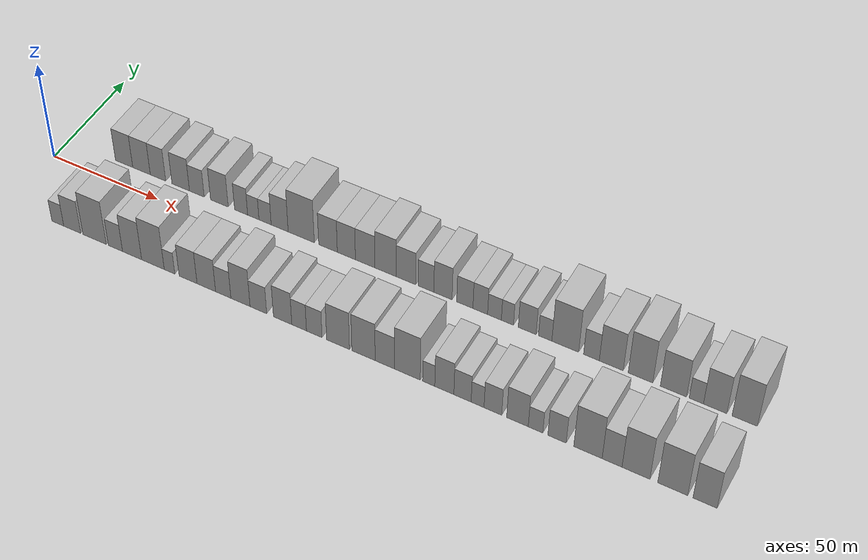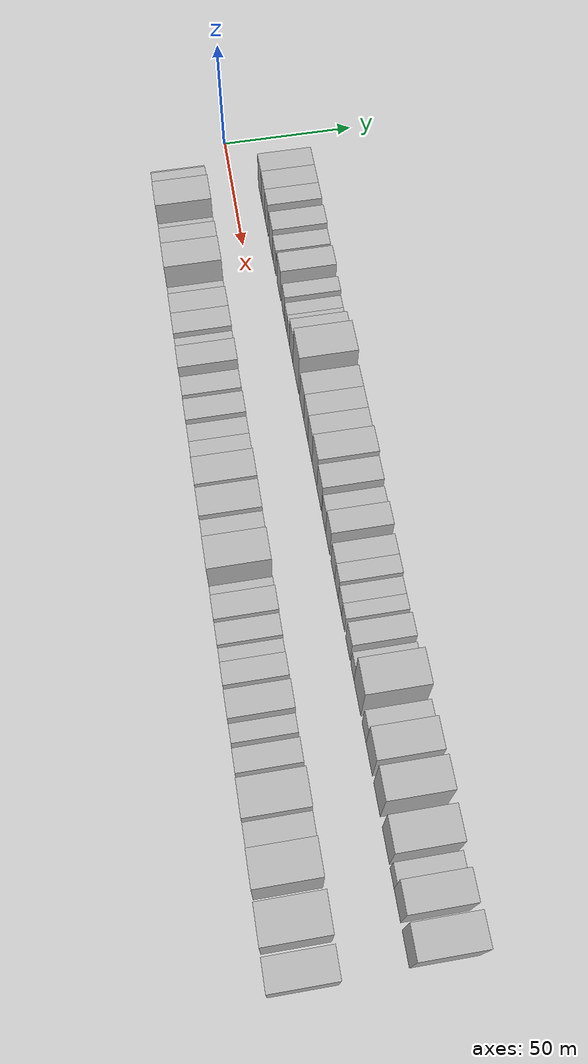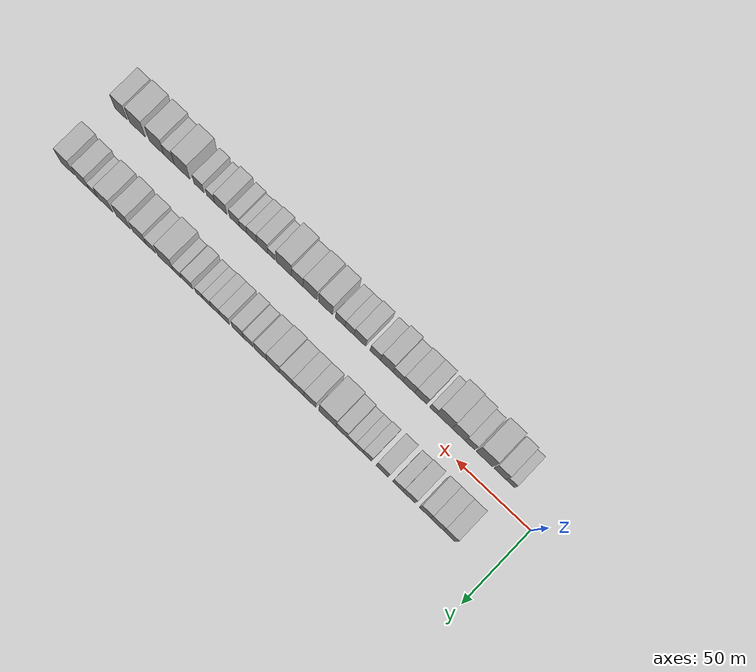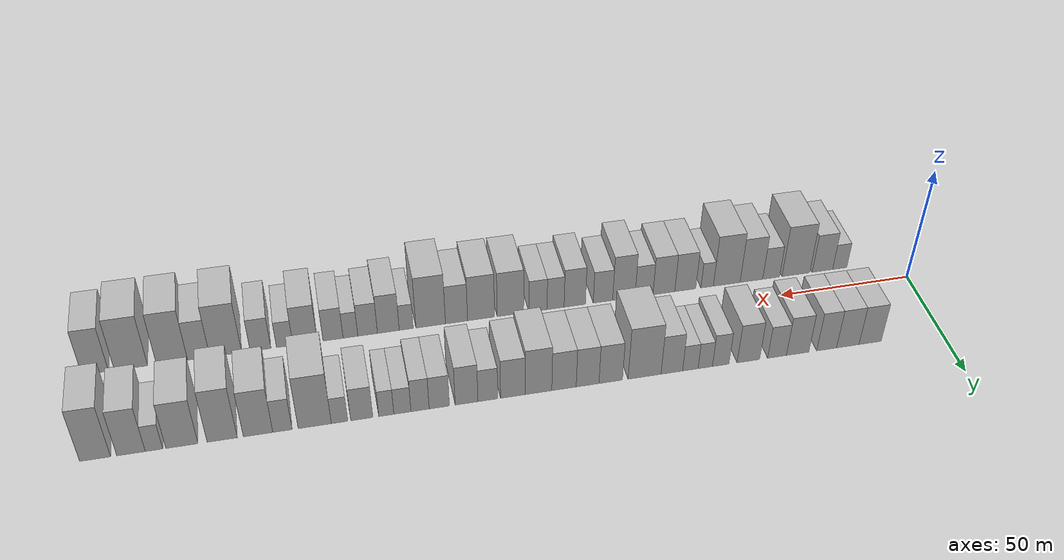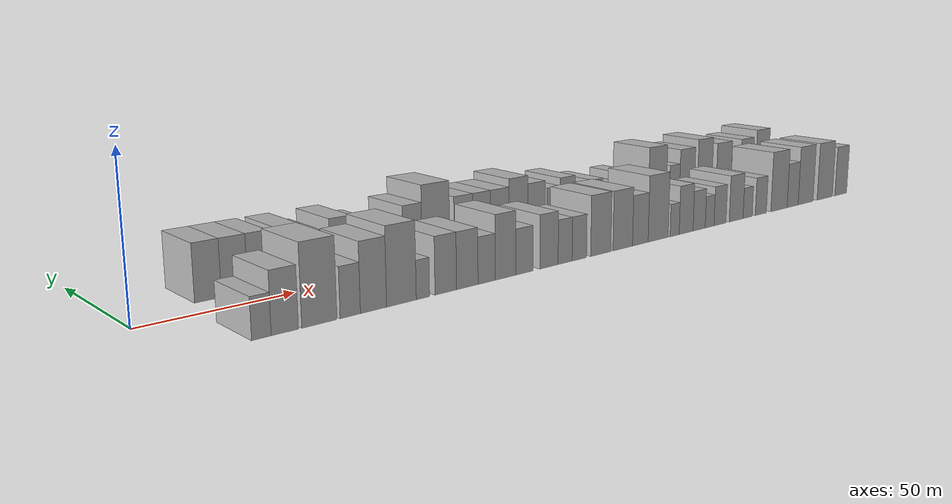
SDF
<sdf version="1.6">
 <world name="default">
  <scene>
   <sky><clouds><speed>12</speed></clouds></sky>
   <ambient>0.4 0.4 0.4 1</ambient>
   <background>0.7 0.7 0.7 1</background>
   <shadows>1</shadows>
  </scene>
  <gravity>0 0 -9.8066</gravity>
  <magnetic_field>6e-06 2.3e-05 -4.2e-05</magnetic_field>
  <physics default="0" name="default_physics" type="ode">
   <ode>
    <solver>
     <type>quick</type>
     <iters>10</iters>
     <sor>1.0</sor>
     <use_dynamic_moi_rescaling>0</use_dynamic_moi_rescaling>
    </solver>
    <constraints>
     <cfm>0</cfm>
     <erp>0.2</erp>
     <contact_max_correcting_vel>100</contact_max_correcting_vel>
     <contact_surface_layer>0.001</contact_surface_layer>
    </constraints>
   </ode>
   <max_step_size>0.004</max_step_size>
   <real_time_factor>1</real_time_factor>
   <real_time_update_rate>250</real_time_update_rate>
  </physics>
  <light name="sun" type="directional">
   <pose>0 0 10 0 0 0</pose>
   <diffuse>0.8 0.8 0.8 1</diffuse>
   <specular>0.2 0.2 0.2 1</specular>
   <attenuation>
    <range>1000</range>
    <constant>0.9</constant>
    <linear>0.01</linear>
    <quadratic>0.001</quadratic>
   </attenuation>
   <direction>-0.5 0.1 -0.9</direction>
  </light>
  <model name="building_1">
   <static>1</static>
   <pose>27.2132 20.0000 0 0.000000 0.000000 1.570796</pose>
   <link name="link">
    <pose>0 0 9.00 0 0 0</pose>
    <collision name="collision"><geometry><box><size>20.0000 8.4265 18.0000</size></box></geometry></collision>
    <visual name="visual">
     <cast_shadows>0</cast_shadows>
     <geometry><box><size>20.0000 8.4265 18.0000</size></box></geometry>
     <material>
      <script>
       <uri>model://HANNAS_wall/materials/scripts</uri>
       <uri>model://HANNAS_wall/materials/textures</uri>
       <name>vrc/HANNAS_wall</name>
      </script>
     </material>
    </visual>
   </link>
  </model>
  <model name="building_2">
   <static>1</static>
   <pose>35.6799 20.0000 0 0.000000 0.000000 1.570796</pose>
   <link name="link">
    <pose>0 0 9.00 0 0 0</pose>
    <collision name="collision"><geometry><box><size>20.0000 8.5069 18.0000</size></box></geometry></collision>
    <visual name="visual">
     <cast_shadows>0</cast_shadows>
     <geometry><box><size>20.0000 8.5069 18.0000</size></box></geometry>
     <material>
      <script>
       <uri>model://HANNAS_wall/materials/scripts</uri>
       <uri>model://HANNAS_wall/materials/textures</uri>
       <name>vrc/HANNAS_wall</name>
      </script>
     </material>
    </visual>
   </link>
  </model>
  <model name="building_3">
   <static>1</static>
   <pose>43.6519 20.0000 0 0.000000 0.000000 1.570796</pose>
   <link name="link">
    <pose>0 0 9.00 0 0 0</pose>
    <collision name="collision"><geometry><box><size>20.0000 7.4371 18.0000</size></box></geometry></collision>
    <visual name="visual">
     <cast_shadows>0</cast_shadows>
     <geometry><box><size>20.0000 7.4371 18.0000</size></box></geometry>
     <material>
      <script>
       <uri>model://HANNAS_wall/materials/scripts</uri>
       <uri>model://HANNAS_wall/materials/textures</uri>
       <name>vrc/HANNAS_wall</name>
      </script>
     </material>
    </visual>
   </link>
  </model>
  <model name="building_4">
   <static>1</static>
   <pose>54.5513 20.0000 0 0.000000 0.000000 1.570796</pose>
   <link name="link">
    <pose>0 0 9.00 0 0 0</pose>
    <collision name="collision"><geometry><box><size>20.0000 8.3616 18.0000</size></box></geometry></collision>
    <visual name="visual">
     <cast_shadows>0</cast_shadows>
     <geometry><box><size>20.0000 8.3616 18.0000</size></box></geometry>
     <material>
      <script>
       <uri>model://HANNAS_wall/materials/scripts</uri>
       <uri>model://HANNAS_wall/materials/textures</uri>
       <name>vrc/HANNAS_wall</name>
      </script>
     </material>
    </visual>
   </link>
  </model>
  <model name="building_5">
   <static>1</static>
   <pose>62.2326 20.0000 0 0.000000 0.000000 1.570796</pose>
   <link name="link">
    <pose>0 0 7.50 0 0 0</pose>
    <collision name="collision"><geometry><box><size>20.0000 7.0010 15.0000</size></box></geometry></collision>
    <visual name="visual">
     <cast_shadows>0</cast_shadows>
     <geometry><box><size>20.0000 7.0010 15.0000</size></box></geometry>
     <material>
      <script>
       <uri>model://HANNAS_wall/materials/scripts</uri>
       <uri>model://HANNAS_wall/materials/textures</uri>
       <name>vrc/HANNAS_wall</name>
      </script>
     </material>
    </visual>
   </link>
  </model>
  <model name="building_6">
   <static>1</static>
   <pose>72.8864 20.0000 0 0.000000 0.000000 1.570796</pose>
   <link name="link">
    <pose>0 0 9.00 0 0 0</pose>
    <collision name="collision"><geometry><box><size>20.0000 8.3066 18.0000</size></box></geometry></collision>
    <visual name="visual">
     <cast_shadows>0</cast_shadows>
     <geometry><box><size>20.0000 8.3066 18.0000</size></box></geometry>
     <material>
      <script>
       <uri>model://HANNAS_wall/materials/scripts</uri>
       <uri>model://HANNAS_wall/materials/textures</uri>
       <name>vrc/HANNAS_wall</name>
      </script>
     </material>
    </visual>
   </link>
  </model>
  <model name="building_7">
   <static>1</static>
   <pose>83.0780 20.0000 0 0.000000 0.000000 1.570796</pose>
   <link name="link">
    <pose>0 0 7.50 0 0 0</pose>
    <collision name="collision"><geometry><box><size>20.0000 6.0766 15.0000</size></box></geometry></collision>
    <visual name="visual">
     <cast_shadows>0</cast_shadows>
     <geometry><box><size>20.0000 6.0766 15.0000</size></box></geometry>
     <material>
      <script>
       <uri>model://HANNAS_wall/materials/scripts</uri>
       <uri>model://HANNAS_wall/materials/textures</uri>
       <name>vrc/HANNAS_wall</name>
      </script>
     </material>
    </visual>
   </link>
  </model>
  <model name="building_8">
   <static>1</static>
   <pose>88.7378 20.0000 0 0.000000 0.000000 1.570796</pose>
   <link name="link">
    <pose>0 0 6.00 0 0 0</pose>
    <collision name="collision"><geometry><box><size>20.0000 5.2429 12.0000</size></box></geometry></collision>
    <visual name="visual">
     <cast_shadows>0</cast_shadows>
     <geometry><box><size>20.0000 5.2429 12.0000</size></box></geometry>
     <material>
      <script>
       <uri>model://HANNAS_wall/materials/scripts</uri>
       <uri>model://HANNAS_wall/materials/textures</uri>
       <name>vrc/HANNAS_wall</name>
      </script>
     </material>
    </visual>
   </link>
  </model>
  <model name="building_9">
   <static>1</static>
   <pose>94.1825 20.0000 0 0.000000 0.000000 1.570796</pose>
   <link name="link">
    <pose>0 0 6.00 0 0 0</pose>
    <collision name="collision"><geometry><box><size>20.0000 5.6465 12.0000</size></box></geometry></collision>
    <visual name="visual">
     <cast_shadows>0</cast_shadows>
     <geometry><box><size>20.0000 5.6465 12.0000</size></box></geometry>
     <material>
      <script>
       <uri>model://HANNAS_wall/materials/scripts</uri>
       <uri>model://HANNAS_wall/materials/textures</uri>
       <name>vrc/HANNAS_wall</name>
      </script>
     </material>
    </visual>
   </link>
  </model>
  <model name="building_10">
   <static>1</static>
   <pose>100.9108 20.0000 0 0.000000 0.000000 1.570796</pose>
   <link name="link">
    <pose>0 0 9.00 0 0 0</pose>
    <collision name="collision"><geometry><box><size>20.0000 7.8101 18.0000</size></box></geometry></collision>
    <visual name="visual">
     <cast_shadows>0</cast_shadows>
     <geometry><box><size>20.0000 7.8101 18.0000</size></box></geometry>
     <material>
      <script>
       <uri>model://HANNAS_wall/materials/scripts</uri>
       <uri>model://HANNAS_wall/materials/textures</uri>
       <name>vrc/HANNAS_wall</name>
      </script>
     </material>
    </visual>
   </link>
  </model>
  <model name="building_11">
   <static>1</static>
   <pose>110.7731 20.0000 0 0.000000 0.000000 1.570796</pose>
   <link name="link">
    <pose>0 0 12.00 0 0 0</pose>
    <collision name="collision"><geometry><box><size>20.0000 11.9145 24.0000</size></box></geometry></collision>
    <visual name="visual">
     <cast_shadows>0</cast_shadows>
     <geometry><box><size>20.0000 11.9145 24.0000</size></box></geometry>
     <material>
      <script>
       <uri>model://HANNAS_wall/materials/scripts</uri>
       <uri>model://HANNAS_wall/materials/textures</uri>
       <name>vrc/HANNAS_wall</name>
      </script>
     </material>
    </visual>
   </link>
  </model>
  <model name="building_12">
   <static>1</static>
   <pose>122.9325 20.0000 0 0.000000 0.000000 1.570796</pose>
   <link name="link">
    <pose>0 0 9.00 0 0 0</pose>
    <collision name="collision"><geometry><box><size>20.0000 8.4043 18.0000</size></box></geometry></collision>
    <visual name="visual">
     <cast_shadows>0</cast_shadows>
     <geometry><box><size>20.0000 8.4043 18.0000</size></box></geometry>
     <material>
      <script>
       <uri>model://HANNAS_wall/materials/scripts</uri>
       <uri>model://HANNAS_wall/materials/textures</uri>
       <name>vrc/HANNAS_wall</name>
      </script>
     </material>
    </visual>
   </link>
  </model>
  <model name="building_13">
   <static>1</static>
   <pose>131.1929 20.0000 0 0.000000 0.000000 1.570796</pose>
   <link name="link">
    <pose>0 0 9.00 0 0 0</pose>
    <collision name="collision"><geometry><box><size>20.0000 8.1164 18.0000</size></box></geometry></collision>
    <visual name="visual">
     <cast_shadows>0</cast_shadows>
     <geometry><box><size>20.0000 8.1164 18.0000</size></box></geometry>
     <material>
      <script>
       <uri>model://HANNAS_wall/materials/scripts</uri>
       <uri>model://HANNAS_wall/materials/textures</uri>
       <name>vrc/HANNAS_wall</name>
      </script>
     </material>
    </visual>
   </link>
  </model>
  <model name="building_14">
   <static>1</static>
   <pose>139.5708 20.0000 0 0.000000 0.000000 1.570796</pose>
   <link name="link">
    <pose>0 0 9.00 0 0 0</pose>
    <collision name="collision"><geometry><box><size>20.0000 8.6395 18.0000</size></box></geometry></collision>
    <visual name="visual">
     <cast_shadows>0</cast_shadows>
     <geometry><box><size>20.0000 8.6395 18.0000</size></box></geometry>
     <material>
      <script>
       <uri>model://HANNAS_wall/materials/scripts</uri>
       <uri>model://HANNAS_wall/materials/textures</uri>
       <name>vrc/HANNAS_wall</name>
      </script>
     </material>
    </visual>
   </link>
  </model>
  <model name="building_15">
   <static>1</static>
   <pose>148.5875 20.0000 0 0.000000 0.000000 1.570796</pose>
   <link name="link">
    <pose>0 0 10.50 0 0 0</pose>
    <collision name="collision"><geometry><box><size>20.0000 9.3938 21.0000</size></box></geometry></collision>
    <visual name="visual">
     <cast_shadows>0</cast_shadows>
     <geometry><box><size>20.0000 9.3938 21.0000</size></box></geometry>
     <material>
      <script>
       <uri>model://HANNAS_wall/materials/scripts</uri>
       <uri>model://HANNAS_wall/materials/textures</uri>
       <name>vrc/HANNAS_wall</name>
      </script>
     </material>
    </visual>
   </link>
  </model>
  <model name="building_16">
   <static>1</static>
   <pose>157.5743 20.0000 0 0.000000 0.000000 1.570796</pose>
   <link name="link">
    <pose>0 0 9.00 0 0 0</pose>
    <collision name="collision"><geometry><box><size>20.0000 8.5798 18.0000</size></box></geometry></collision>
    <visual name="visual">
     <cast_shadows>0</cast_shadows>
     <geometry><box><size>20.0000 8.5798 18.0000</size></box></geometry>
     <material>
      <script>
       <uri>model://HANNAS_wall/materials/scripts</uri>
       <uri>model://HANNAS_wall/materials/textures</uri>
       <name>vrc/HANNAS_wall</name>
      </script>
     </material>
    </visual>
   </link>
  </model>
  <model name="building_17">
   <static>1</static>
   <pose>166.3001 20.0000 0 0.000000 0.000000 1.570796</pose>
   <link name="link">
    <pose>0 0 7.50 0 0 0</pose>
    <collision name="collision"><geometry><box><size>20.0000 6.8718 15.0000</size></box></geometry></collision>
    <visual name="visual">
     <cast_shadows>0</cast_shadows>
     <geometry><box><size>20.0000 6.8718 15.0000</size></box></geometry>
     <material>
      <script>
       <uri>model://HANNAS_wall/materials/scripts</uri>
       <uri>model://HANNAS_wall/materials/textures</uri>
       <name>vrc/HANNAS_wall</name>
      </script>
     </material>
    </visual>
   </link>
  </model>
  <model name="building_18">
   <static>1</static>
   <pose>173.6756 20.0000 0 0.000000 0.000000 1.570796</pose>
   <link name="link">
    <pose>0 0 9.00 0 0 0</pose>
    <collision name="collision"><geometry><box><size>20.0000 7.8792 18.0000</size></box></geometry></collision>
    <visual name="visual">
     <cast_shadows>0</cast_shadows>
     <geometry><box><size>20.0000 7.8792 18.0000</size></box></geometry>
     <material>
      <script>
       <uri>model://HANNAS_wall/materials/scripts</uri>
       <uri>model://HANNAS_wall/materials/textures</uri>
       <name>vrc/HANNAS_wall</name>
      </script>
     </material>
    </visual>
   </link>
  </model>
  <model name="building_19">
   <static>1</static>
   <pose>183.0919 20.0000 0 0.000000 0.000000 1.570796</pose>
   <link name="link">
    <pose>0 0 7.50 0 0 0</pose>
    <collision name="collision"><geometry><box><size>20.0000 6.9536 15.0000</size></box></geometry></collision>
    <visual name="visual">
     <cast_shadows>0</cast_shadows>
     <geometry><box><size>20.0000 6.9536 15.0000</size></box></geometry>
     <material>
      <script>
       <uri>model://HANNAS_wall/materials/scripts</uri>
       <uri>model://HANNAS_wall/materials/textures</uri>
       <name>vrc/HANNAS_wall</name>
      </script>
     </material>
    </visual>
   </link>
  </model>
  <model name="building_20">
   <static>1</static>
   <pose>189.6906 20.0000 0 0.000000 0.000000 1.570796</pose>
   <link name="link">
    <pose>0 0 7.50 0 0 0</pose>
    <collision name="collision"><geometry><box><size>20.0000 6.2437 15.0000</size></box></geometry></collision>
    <visual name="visual">
     <cast_shadows>0</cast_shadows>
     <geometry><box><size>20.0000 6.2437 15.0000</size></box></geometry>
     <material>
      <script>
       <uri>model://HANNAS_wall/materials/scripts</uri>
       <uri>model://HANNAS_wall/materials/textures</uri>
       <name>vrc/HANNAS_wall</name>
      </script>
     </material>
    </visual>
   </link>
  </model>
  <model name="building_21">
   <static>1</static>
   <pose>195.7336 20.0000 0 0.000000 0.000000 1.570796</pose>
   <link name="link">
    <pose>0 0 6.00 0 0 0</pose>
    <collision name="collision"><geometry><box><size>20.0000 5.8425 12.0000</size></box></geometry></collision>
    <visual name="visual">
     <cast_shadows>0</cast_shadows>
     <geometry><box><size>20.0000 5.8425 12.0000</size></box></geometry>
     <material>
      <script>
       <uri>model://HANNAS_wall/materials/scripts</uri>
       <uri>model://HANNAS_wall/materials/textures</uri>
       <name>vrc/HANNAS_wall</name>
      </script>
     </material>
    </visual>
   </link>
  </model>
  <model name="building_22">
   <static>1</static>
   <pose>201.2205 20.0000 0 0.000000 0.000000 1.570796</pose>
   <link name="link">
    <pose>0 0 6.00 0 0 0</pose>
    <collision name="collision"><geometry><box><size>20.0000 5.1312 12.0000</size></box></geometry></collision>
    <visual name="visual">
     <cast_shadows>0</cast_shadows>
     <geometry><box><size>20.0000 5.1312 12.0000</size></box></geometry>
     <material>
      <script>
       <uri>model://HANNAS_wall/materials/scripts</uri>
       <uri>model://HANNAS_wall/materials/textures</uri>
       <name>vrc/HANNAS_wall</name>
      </script>
     </material>
    </visual>
   </link>
  </model>
  <model name="building_23">
   <static>1</static>
   <pose>209.5263 20.0000 0 0.000000 0.000000 1.570796</pose>
   <link name="link">
    <pose>0 0 7.50 0 0 0</pose>
    <collision name="collision"><geometry><box><size>20.0000 7.4806 15.0000</size></box></geometry></collision>
    <visual name="visual">
     <cast_shadows>0</cast_shadows>
     <geometry><box><size>20.0000 7.4806 15.0000</size></box></geometry>
     <material>
      <script>
       <uri>model://HANNAS_wall/materials/scripts</uri>
       <uri>model://HANNAS_wall/materials/textures</uri>
       <name>vrc/HANNAS_wall</name>
      </script>
     </material>
    </visual>
   </link>
  </model>
  <model name="building_24">
   <static>1</static>
   <pose>217.0332 20.0000 0 0.000000 0.000000 1.570796</pose>
   <link name="link">
    <pose>0 0 6.00 0 0 0</pose>
    <collision name="collision"><geometry><box><size>20.0000 5.5331 12.0000</size></box></geometry></collision>
    <visual name="visual">
     <cast_shadows>0</cast_shadows>
     <geometry><box><size>20.0000 5.5331 12.0000</size></box></geometry>
     <material>
      <script>
       <uri>model://HANNAS_wall/materials/scripts</uri>
       <uri>model://HANNAS_wall/materials/textures</uri>
       <name>vrc/HANNAS_wall</name>
      </script>
     </material>
    </visual>
   </link>
  </model>
  <model name="building_25">
   <static>1</static>
   <pose>225.3526 20.0000 0 0.000000 0.000000 1.570796</pose>
   <link name="link">
    <pose>0 0 12.00 0 0 0</pose>
    <collision name="collision"><geometry><box><size>20.0000 11.1056 24.0000</size></box></geometry></collision>
    <visual name="visual">
     <cast_shadows>0</cast_shadows>
     <geometry><box><size>20.0000 11.1056 24.0000</size></box></geometry>
     <material>
      <script>
       <uri>model://HANNAS_wall/materials/scripts</uri>
       <uri>model://HANNAS_wall/materials/textures</uri>
       <name>vrc/HANNAS_wall</name>
      </script>
     </material>
    </visual>
   </link>
  </model>
  <model name="building_26">
   <static>1</static>
   <pose>236.1133 20.0000 0 0.000000 0.000000 1.570796</pose>
   <link name="link">
    <pose>0 0 7.50 0 0 0</pose>
    <collision name="collision"><geometry><box><size>20.0000 6.4158 15.0000</size></box></geometry></collision>
    <visual name="visual">
     <cast_shadows>0</cast_shadows>
     <geometry><box><size>20.0000 6.4158 15.0000</size></box></geometry>
     <material>
      <script>
       <uri>model://HANNAS_wall/materials/scripts</uri>
       <uri>model://HANNAS_wall/materials/textures</uri>
       <name>vrc/HANNAS_wall</name>
      </script>
     </material>
    </visual>
   </link>
  </model>
  <model name="building_27">
   <static>1</static>
   <pose>244.1874 20.0000 0 0.000000 0.000000 1.570796</pose>
   <link name="link">
    <pose>0 0 10.50 0 0 0</pose>
    <collision name="collision"><geometry><box><size>20.0000 9.7324 21.0000</size></box></geometry></collision>
    <visual name="visual">
     <cast_shadows>0</cast_shadows>
     <geometry><box><size>20.0000 9.7324 21.0000</size></box></geometry>
     <material>
      <script>
       <uri>model://HANNAS_wall/materials/scripts</uri>
       <uri>model://HANNAS_wall/materials/textures</uri>
       <name>vrc/HANNAS_wall</name>
      </script>
     </material>
    </visual>
   </link>
  </model>
  <model name="building_28">
   <static>1</static>
   <pose>255.9991 20.0000 0 0.000000 0.000000 1.570796</pose>
   <link name="link">
    <pose>0 0 12.00 0 0 0</pose>
    <collision name="collision"><geometry><box><size>20.0000 9.8909 24.0000</size></box></geometry></collision>
    <visual name="visual">
     <cast_shadows>0</cast_shadows>
     <geometry><box><size>20.0000 9.8909 24.0000</size></box></geometry>
     <material>
      <script>
       <uri>model://HANNAS_wall/materials/scripts</uri>
       <uri>model://HANNAS_wall/materials/textures</uri>
       <name>vrc/HANNAS_wall</name>
      </script>
     </material>
    </visual>
   </link>
  </model>
  <model name="building_29">
   <static>1</static>
   <pose>269.1668 20.0000 0 0.000000 0.000000 1.570796</pose>
   <link name="link">
    <pose>0 0 10.50 0 0 0</pose>
    <collision name="collision"><geometry><box><size>20.0000 10.4446 21.0000</size></box></geometry></collision>
    <visual name="visual">
     <cast_shadows>0</cast_shadows>
     <geometry><box><size>20.0000 10.4446 21.0000</size></box></geometry>
     <material>
      <script>
       <uri>model://HANNAS_wall/materials/scripts</uri>
       <uri>model://HANNAS_wall/materials/textures</uri>
       <name>vrc/HANNAS_wall</name>
      </script>
     </material>
    </visual>
   </link>
  </model>
  <model name="building_30">
   <static>1</static>
   <pose>278.2109 20.0000 0 0.000000 0.000000 1.570796</pose>
   <link name="link">
    <pose>0 0 6.00 0 0 0</pose>
    <collision name="collision"><geometry><box><size>20.0000 5.6436 12.0000</size></box></geometry></collision>
    <visual name="visual">
     <cast_shadows>0</cast_shadows>
     <geometry><box><size>20.0000 5.6436 12.0000</size></box></geometry>
     <material>
      <script>
       <uri>model://HANNAS_wall/materials/scripts</uri>
       <uri>model://HANNAS_wall/materials/textures</uri>
       <name>vrc/HANNAS_wall</name>
      </script>
     </material>
    </visual>
   </link>
  </model>
  <model name="building_31">
   <static>1</static>
   <pose>285.6139 20.0000 0 0.000000 0.000000 1.570796</pose>
   <link name="link">
    <pose>0 0 10.50 0 0 0</pose>
    <collision name="collision"><geometry><box><size>20.0000 9.1622 21.0000</size></box></geometry></collision>
    <visual name="visual">
     <cast_shadows>0</cast_shadows>
     <geometry><box><size>20.0000 9.1622 21.0000</size></box></geometry>
     <material>
      <script>
       <uri>model://HANNAS_wall/materials/scripts</uri>
       <uri>model://HANNAS_wall/materials/textures</uri>
       <name>vrc/HANNAS_wall</name>
      </script>
     </material>
    </visual>
   </link>
  </model>
  <model name="building_32">
   <static>1</static>
   <pose>297.1153 20.0000 0 0.000000 0.000000 1.570796</pose>
   <link name="link">
    <pose>0 0 12.00 0 0 0</pose>
    <collision name="collision"><geometry><box><size>20.0000 9.8406 24.0000</size></box></geometry></collision>
    <visual name="visual">
     <cast_shadows>0</cast_shadows>
     <geometry><box><size>20.0000 9.8406 24.0000</size></box></geometry>
     <material>
      <script>
       <uri>model://HANNAS_wall/materials/scripts</uri>
       <uri>model://HANNAS_wall/materials/textures</uri>
       <name>vrc/HANNAS_wall</name>
      </script>
     </material>
    </visual>
   </link>
  </model>
  <model name="building_33">
   <static>1</static>
   <pose>22.8584 -20.0000 0 0.000000 0.000000 1.570796</pose>
   <link name="link">
    <pose>0 0 6.00 0 0 0</pose>
    <collision name="collision"><geometry><box><size>20.0000 5.7169 12.0000</size></box></geometry></collision>
    <visual name="visual">
     <cast_shadows>0</cast_shadows>
     <geometry><box><size>20.0000 5.7169 12.0000</size></box></geometry>
     <material>
      <script>
       <uri>model://HANNAS_wall/materials/scripts</uri>
       <uri>model://HANNAS_wall/materials/textures</uri>
       <name>vrc/HANNAS_wall</name>
      </script>
     </material>
    </visual>
   </link>
  </model>
  <model name="building_34">
   <static>1</static>
   <pose>29.8054 -20.0000 0 0.000000 0.000000 1.570796</pose>
   <link name="link">
    <pose>0 0 9.00 0 0 0</pose>
    <collision name="collision"><geometry><box><size>20.0000 8.1771 18.0000</size></box></geometry></collision>
    <visual name="visual">
     <cast_shadows>0</cast_shadows>
     <geometry><box><size>20.0000 8.1771 18.0000</size></box></geometry>
     <material>
      <script>
       <uri>model://HANNAS_wall/materials/scripts</uri>
       <uri>model://HANNAS_wall/materials/textures</uri>
       <name>vrc/HANNAS_wall</name>
      </script>
     </material>
    </visual>
   </link>
  </model>
  <model name="building_35">
   <static>1</static>
   <pose>40.4253 -20.0000 0 0.000000 0.000000 1.570796</pose>
   <link name="link">
    <pose>0 0 12.00 0 0 0</pose>
    <collision name="collision"><geometry><box><size>20.0000 11.0627 24.0000</size></box></geometry></collision>
    <visual name="visual">
     <cast_shadows>0</cast_shadows>
     <geometry><box><size>20.0000 11.0627 24.0000</size></box></geometry>
     <material>
      <script>
       <uri>model://HANNAS_wall/materials/scripts</uri>
       <uri>model://HANNAS_wall/materials/textures</uri>
       <name>vrc/HANNAS_wall</name>
      </script>
     </material>
    </visual>
   </link>
  </model>
  <model name="building_36">
   <static>1</static>
   <pose>50.2929 -20.0000 0 0.000000 0.000000 1.570796</pose>
   <link name="link">
    <pose>0 0 7.50 0 0 0</pose>
    <collision name="collision"><geometry><box><size>20.0000 6.6725 15.0000</size></box></geometry></collision>
    <visual name="visual">
     <cast_shadows>0</cast_shadows>
     <geometry><box><size>20.0000 6.6725 15.0000</size></box></geometry>
     <material>
      <script>
       <uri>model://HANNAS_wall/materials/scripts</uri>
       <uri>model://HANNAS_wall/materials/textures</uri>
       <name>vrc/HANNAS_wall</name>
      </script>
     </material>
    </visual>
   </link>
  </model>
  <model name="building_37">
   <static>1</static>
   <pose>58.0925 -20.0000 0 0.000000 0.000000 1.570796</pose>
   <link name="link">
    <pose>0 0 10.50 0 0 0</pose>
    <collision name="collision"><geometry><box><size>20.0000 8.9267 21.0000</size></box></geometry></collision>
    <visual name="visual">
     <cast_shadows>0</cast_shadows>
     <geometry><box><size>20.0000 8.9267 21.0000</size></box></geometry>
     <material>
      <script>
       <uri>model://HANNAS_wall/materials/scripts</uri>
       <uri>model://HANNAS_wall/materials/textures</uri>
       <name>vrc/HANNAS_wall</name>
      </script>
     </material>
    </visual>
   </link>
  </model>
  <model name="building_38">
   <static>1</static>
   <pose>67.7901 -20.0000 0 0.000000 0.000000 1.570796</pose>
   <link name="link">
    <pose>0 0 12.00 0 0 0</pose>
    <collision name="collision"><geometry><box><size>20.0000 10.4684 24.0000</size></box></geometry></collision>
    <visual name="visual">
     <cast_shadows>0</cast_shadows>
     <geometry><box><size>20.0000 10.4684 24.0000</size></box></geometry>
     <material>
      <script>
       <uri>model://HANNAS_wall/materials/scripts</uri>
       <uri>model://HANNAS_wall/materials/textures</uri>
       <name>vrc/HANNAS_wall</name>
      </script>
     </material>
    </visual>
   </link>
  </model>
  <model name="building_39">
   <static>1</static>
   <pose>75.4526 -20.0000 0 0.000000 0.000000 1.570796</pose>
   <link name="link">
    <pose>0 0 6.00 0 0 0</pose>
    <collision name="collision"><geometry><box><size>20.0000 4.8567 12.0000</size></box></geometry></collision>
    <visual name="visual">
     <cast_shadows>0</cast_shadows>
     <geometry><box><size>20.0000 4.8567 12.0000</size></box></geometry>
     <material>
      <script>
       <uri>model://HANNAS_wall/materials/scripts</uri>
       <uri>model://HANNAS_wall/materials/textures</uri>
       <name>vrc/HANNAS_wall</name>
      </script>
     </material>
    </visual>
   </link>
  </model>
  <model name="building_40">
   <static>1</static>
   <pose>83.9626 -20.0000 0 0.000000 0.000000 1.570796</pose>
   <link name="link">
    <pose>0 0 9.00 0 0 0</pose>
    <collision name="collision"><geometry><box><size>20.0000 8.1632 18.0000</size></box></geometry></collision>
    <visual name="visual">
     <cast_shadows>0</cast_shadows>
     <geometry><box><size>20.0000 8.1632 18.0000</size></box></geometry>
     <material>
      <script>
       <uri>model://HANNAS_wall/materials/scripts</uri>
       <uri>model://HANNAS_wall/materials/textures</uri>
       <name>vrc/HANNAS_wall</name>
      </script>
     </material>
    </visual>
   </link>
  </model>
  <model name="building_41">
   <static>1</static>
   <pose>92.2539 -20.0000 0 0.000000 0.000000 1.570796</pose>
   <link name="link">
    <pose>0 0 9.00 0 0 0</pose>
    <collision name="collision"><geometry><box><size>20.0000 8.4194 18.0000</size></box></geometry></collision>
    <visual name="visual">
     <cast_shadows>0</cast_shadows>
     <geometry><box><size>20.0000 8.4194 18.0000</size></box></geometry>
     <material>
      <script>
       <uri>model://HANNAS_wall/materials/scripts</uri>
       <uri>model://HANNAS_wall/materials/textures</uri>
       <name>vrc/HANNAS_wall</name>
      </script>
     </material>
    </visual>
   </link>
  </model>
  <model name="building_42">
   <static>1</static>
   <pose>99.9239 -20.0000 0 0.000000 0.000000 1.570796</pose>
   <link name="link">
    <pose>0 0 7.50 0 0 0</pose>
    <collision name="collision"><geometry><box><size>20.0000 6.9206 15.0000</size></box></geometry></collision>
    <visual name="visual">
     <cast_shadows>0</cast_shadows>
     <geometry><box><size>20.0000 6.9206 15.0000</size></box></geometry>
     <material>
      <script>
       <uri>model://HANNAS_wall/materials/scripts</uri>
       <uri>model://HANNAS_wall/materials/textures</uri>
       <name>vrc/HANNAS_wall</name>
      </script>
     </material>
    </visual>
   </link>
  </model>
  <model name="building_43">
   <static>1</static>
   <pose>107.6660 -20.0000 0 0.000000 0.000000 1.570796</pose>
   <link name="link">
    <pose>0 0 10.50 0 0 0</pose>
    <collision name="collision"><geometry><box><size>20.0000 8.5636 21.0000</size></box></geometry></collision>
    <visual name="visual">
     <cast_shadows>0</cast_shadows>
     <geometry><box><size>20.0000 8.5636 21.0000</size></box></geometry>
     <material>
      <script>
       <uri>model://HANNAS_wall/materials/scripts</uri>
       <uri>model://HANNAS_wall/materials/textures</uri>
       <name>vrc/HANNAS_wall</name>
      </script>
     </material>
    </visual>
   </link>
  </model>
  <model name="building_44">
   <static>1</static>
   <pose>115.6397 -20.0000 0 0.000000 0.000000 1.570796</pose>
   <link name="link">
    <pose>0 0 7.50 0 0 0</pose>
    <collision name="collision"><geometry><box><size>20.0000 7.3838 15.0000</size></box></geometry></collision>
    <visual name="visual">
     <cast_shadows>0</cast_shadows>
     <geometry><box><size>20.0000 7.3838 15.0000</size></box></geometry>
     <material>
      <script>
       <uri>model://HANNAS_wall/materials/scripts</uri>
       <uri>model://HANNAS_wall/materials/textures</uri>
       <name>vrc/HANNAS_wall</name>
      </script>
     </material>
    </visual>
   </link>
  </model>
  <model name="building_45">
   <static>1</static>
   <pose>126.3735 -20.0000 0 0.000000 0.000000 1.570796</pose>
   <link name="link">
    <pose>0 0 9.00 0 0 0</pose>
    <collision name="collision"><geometry><box><size>20.0000 8.0839 18.0000</size></box></geometry></collision>
    <visual name="visual">
     <cast_shadows>0</cast_shadows>
     <geometry><box><size>20.0000 8.0839 18.0000</size></box></geometry>
     <material>
      <script>
       <uri>model://HANNAS_wall/materials/scripts</uri>
       <uri>model://HANNAS_wall/materials/textures</uri>
       <name>vrc/HANNAS_wall</name>
      </script>
     </material>
    </visual>
   </link>
  </model>
  <model name="building_46">
   <static>1</static>
   <pose>133.6228 -20.0000 0 0.000000 0.000000 1.570796</pose>
   <link name="link">
    <pose>0 0 7.50 0 0 0</pose>
    <collision name="collision"><geometry><box><size>20.0000 6.4146 15.0000</size></box></geometry></collision>
    <visual name="visual">
     <cast_shadows>0</cast_shadows>
     <geometry><box><size>20.0000 6.4146 15.0000</size></box></geometry>
     <material>
      <script>
       <uri>model://HANNAS_wall/materials/scripts</uri>
       <uri>model://HANNAS_wall/materials/textures</uri>
       <name>vrc/HANNAS_wall</name>
      </script>
     </material>
    </visual>
   </link>
  </model>
  <model name="building_47">
   <static>1</static>
   <pose>140.2219 -20.0000 0 0.000000 0.000000 1.570796</pose>
   <link name="link">
    <pose>0 0 7.50 0 0 0</pose>
    <collision name="collision"><geometry><box><size>20.0000 6.7836 15.0000</size></box></geometry></collision>
    <visual name="visual">
     <cast_shadows>0</cast_shadows>
     <geometry><box><size>20.0000 6.7836 15.0000</size></box></geometry>
     <material>
      <script>
       <uri>model://HANNAS_wall/materials/scripts</uri>
       <uri>model://HANNAS_wall/materials/textures</uri>
       <name>vrc/HANNAS_wall</name>
      </script>
     </material>
    </visual>
   </link>
  </model>
  <model name="building_48">
   <static>1</static>
   <pose>150.5389 -20.0000 0 0.000000 0.000000 1.570796</pose>
   <link name="link">
    <pose>0 0 10.50 0 0 0</pose>
    <collision name="collision"><geometry><box><size>20.0000 9.8505 21.0000</size></box></geometry></collision>
    <visual name="visual">
     <cast_shadows>0</cast_shadows>
     <geometry><box><size>20.0000 9.8505 21.0000</size></box></geometry>
     <material>
      <script>
       <uri>model://HANNAS_wall/materials/scripts</uri>
       <uri>model://HANNAS_wall/materials/textures</uri>
       <name>vrc/HANNAS_wall</name>
      </script>
     </material>
    </visual>
   </link>
  </model>
  <model name="building_49">
   <static>1</static>
   <pose>161.4462 -20.0000 0 0.000000 0.000000 1.570796</pose>
   <link name="link">
    <pose>0 0 10.50 0 0 0</pose>
    <collision name="collision"><geometry><box><size>20.0000 9.9641 21.0000</size></box></geometry></collision>
    <visual name="visual">
     <cast_shadows>0</cast_shadows>
     <geometry><box><size>20.0000 9.9641 21.0000</size></box></geometry>
     <material>
      <script>
       <uri>model://HANNAS_wall/materials/scripts</uri>
       <uri>model://HANNAS_wall/materials/textures</uri>
       <name>vrc/HANNAS_wall</name>
      </script>
     </material>
    </visual>
   </link>
  </model>
  <model name="building_50">
   <static>1</static>
   <pose>170.5094 -20.0000 0 0.000000 0.000000 1.570796</pose>
   <link name="link">
    <pose>0 0 9.00 0 0 0</pose>
    <collision name="collision"><geometry><box><size>20.0000 8.1622 18.0000</size></box></geometry></collision>
    <visual name="visual">
     <cast_shadows>0</cast_shadows>
     <geometry><box><size>20.0000 8.1622 18.0000</size></box></geometry>
     <material>
      <script>
       <uri>model://HANNAS_wall/materials/scripts</uri>
       <uri>model://HANNAS_wall/materials/textures</uri>
       <name>vrc/HANNAS_wall</name>
      </script>
     </material>
    </visual>
   </link>
  </model>
  <model name="building_51">
   <static>1</static>
   <pose>180.0076 -20.0000 0 0.000000 0.000000 1.570796</pose>
   <link name="link">
    <pose>0 0 12.00 0 0 0</pose>
    <collision name="collision"><geometry><box><size>20.0000 10.8341 24.0000</size></box></geometry></collision>
    <visual name="visual">
     <cast_shadows>0</cast_shadows>
     <geometry><box><size>20.0000 10.8341 24.0000</size></box></geometry>
     <material>
      <script>
       <uri>model://HANNAS_wall/materials/scripts</uri>
       <uri>model://HANNAS_wall/materials/textures</uri>
       <name>vrc/HANNAS_wall</name>
      </script>
     </material>
    </visual>
   </link>
  </model>
  <model name="building_52">
   <static>1</static>
   <pose>188.9619 -20.0000 0 0.000000 0.000000 1.570796</pose>
   <link name="link">
    <pose>0 0 6.00 0 0 0</pose>
    <collision name="collision"><geometry><box><size>20.0000 5.0745 12.0000</size></box></geometry></collision>
    <visual name="visual">
     <cast_shadows>0</cast_shadows>
     <geometry><box><size>20.0000 5.0745 12.0000</size></box></geometry>
     <material>
      <script>
       <uri>model://HANNAS_wall/materials/scripts</uri>
       <uri>model://HANNAS_wall/materials/textures</uri>
       <name>vrc/HANNAS_wall</name>
      </script>
     </material>
    </visual>
   </link>
  </model>
  <model name="building_53">
   <static>1</static>
   <pose>195.4477 -20.0000 0 0.000000 0.000000 1.570796</pose>
   <link name="link">
    <pose>0 0 9.00 0 0 0</pose>
    <collision name="collision"><geometry><box><size>20.0000 7.8971 18.0000</size></box></geometry></collision>
    <visual name="visual">
     <cast_shadows>0</cast_shadows>
     <geometry><box><size>20.0000 7.8971 18.0000</size></box></geometry>
     <material>
      <script>
       <uri>model://HANNAS_wall/materials/scripts</uri>
       <uri>model://HANNAS_wall/materials/textures</uri>
       <name>vrc/HANNAS_wall</name>
      </script>
     </material>
    </visual>
   </link>
  </model>
  <model name="building_54">
   <static>1</static>
   <pose>202.9474 -20.0000 0 0.000000 0.000000 1.570796</pose>
   <link name="link">
    <pose>0 0 7.50 0 0 0</pose>
    <collision name="collision"><geometry><box><size>20.0000 7.1022 15.0000</size></box></geometry></collision>
    <visual name="visual">
     <cast_shadows>0</cast_shadows>
     <geometry><box><size>20.0000 7.1022 15.0000</size></box></geometry>
     <material>
      <script>
       <uri>model://HANNAS_wall/materials/scripts</uri>
       <uri>model://HANNAS_wall/materials/textures</uri>
       <name>vrc/HANNAS_wall</name>
      </script>
     </material>
    </visual>
   </link>
  </model>
  <model name="building_55">
   <static>1</static>
   <pose>209.1400 -20.0000 0 0.000000 0.000000 1.570796</pose>
   <link name="link">
    <pose>0 0 6.00 0 0 0</pose>
    <collision name="collision"><geometry><box><size>20.0000 5.2831 12.0000</size></box></geometry></collision>
    <visual name="visual">
     <cast_shadows>0</cast_shadows>
     <geometry><box><size>20.0000 5.2831 12.0000</size></box></geometry>
     <material>
      <script>
       <uri>model://HANNAS_wall/materials/scripts</uri>
       <uri>model://HANNAS_wall/materials/textures</uri>
       <name>vrc/HANNAS_wall</name>
      </script>
     </material>
    </visual>
   </link>
  </model>
  <model name="building_56">
   <static>1</static>
   <pose>215.3813 -20.0000 0 0.000000 0.000000 1.570796</pose>
   <link name="link">
    <pose>0 0 7.50 0 0 0</pose>
    <collision name="collision"><geometry><box><size>20.0000 7.1994 15.0000</size></box></geometry></collision>
    <visual name="visual">
     <cast_shadows>0</cast_shadows>
     <geometry><box><size>20.0000 7.1994 15.0000</size></box></geometry>
     <material>
      <script>
       <uri>model://HANNAS_wall/materials/scripts</uri>
       <uri>model://HANNAS_wall/materials/textures</uri>
       <name>vrc/HANNAS_wall</name>
      </script>
     </material>
    </visual>
   </link>
  </model>
  <model name="building_57">
   <static>1</static>
   <pose>225.3347 -20.0000 0 0.000000 0.000000 1.570796</pose>
   <link name="link">
    <pose>0 0 9.00 0 0 0</pose>
    <collision name="collision"><geometry><box><size>20.0000 8.7075 18.0000</size></box></geometry></collision>
    <visual name="visual">
     <cast_shadows>0</cast_shadows>
     <geometry><box><size>20.0000 8.7075 18.0000</size></box></geometry>
     <material>
      <script>
       <uri>model://HANNAS_wall/materials/scripts</uri>
       <uri>model://HANNAS_wall/materials/textures</uri>
       <name>vrc/HANNAS_wall</name>
      </script>
     </material>
    </visual>
   </link>
  </model>
  <model name="building_58">
   <static>1</static>
   <pose>232.6124 -20.0000 0 0.000000 0.000000 1.570796</pose>
   <link name="link">
    <pose>0 0 6.00 0 0 0</pose>
    <collision name="collision"><geometry><box><size>20.0000 5.8480 12.0000</size></box></geometry></collision>
    <visual name="visual">
     <cast_shadows>0</cast_shadows>
     <geometry><box><size>20.0000 5.8480 12.0000</size></box></geometry>
     <material>
      <script>
       <uri>model://HANNAS_wall/materials/scripts</uri>
       <uri>model://HANNAS_wall/materials/textures</uri>
       <name>vrc/HANNAS_wall</name>
      </script>
     </material>
    </visual>
   </link>
  </model>
  <model name="building_59">
   <static>1</static>
   <pose>241.1796 -20.0000 0 0.000000 0.000000 1.570796</pose>
   <link name="link">
    <pose>0 0 7.50 0 0 0</pose>
    <collision name="collision"><geometry><box><size>20.0000 7.2864 15.0000</size></box></geometry></collision>
    <visual name="visual">
     <cast_shadows>0</cast_shadows>
     <geometry><box><size>20.0000 7.2864 15.0000</size></box></geometry>
     <material>
      <script>
       <uri>model://HANNAS_wall/materials/scripts</uri>
       <uri>model://HANNAS_wall/materials/textures</uri>
       <name>vrc/HANNAS_wall</name>
      </script>
     </material>
    </visual>
   </link>
  </model>
  <model name="building_60">
   <static>1</static>
   <pose>253.3977 -20.0000 0 0.000000 0.000000 1.570796</pose>
   <link name="link">
    <pose>0 0 12.00 0 0 0</pose>
    <collision name="collision"><geometry><box><size>20.0000 11.1497 24.0000</size></box></geometry></collision>
    <visual name="visual">
     <cast_shadows>0</cast_shadows>
     <geometry><box><size>20.0000 11.1497 24.0000</size></box></geometry>
     <material>
      <script>
       <uri>model://HANNAS_wall/materials/scripts</uri>
       <uri>model://HANNAS_wall/materials/textures</uri>
       <name>vrc/HANNAS_wall</name>
      </script>
     </material>
    </visual>
   </link>
  </model>
  <model name="building_61">
   <static>1</static>
   <pose>262.8431 -20.0000 0 0.000000 0.000000 1.570796</pose>
   <link name="link">
    <pose>0 0 9.00 0 0 0</pose>
    <collision name="collision"><geometry><box><size>20.0000 7.7412 18.0000</size></box></geometry></collision>
    <visual name="visual">
     <cast_shadows>0</cast_shadows>
     <geometry><box><size>20.0000 7.7412 18.0000</size></box></geometry>
     <material>
      <script>
       <uri>model://HANNAS_wall/materials/scripts</uri>
       <uri>model://HANNAS_wall/materials/textures</uri>
       <name>vrc/HANNAS_wall</name>
      </script>
     </material>
    </visual>
   </link>
  </model>
  <model name="building_62">
   <static>1</static>
   <pose>272.1034 -20.0000 0 0.000000 0.000000 1.570796</pose>
   <link name="link">
    <pose>0 0 12.00 0 0 0</pose>
    <collision name="collision"><geometry><box><size>20.0000 10.7795 24.0000</size></box></geometry></collision>
    <visual name="visual">
     <cast_shadows>0</cast_shadows>
     <geometry><box><size>20.0000 10.7795 24.0000</size></box></geometry>
     <material>
      <script>
       <uri>model://HANNAS_wall/materials/scripts</uri>
       <uri>model://HANNAS_wall/materials/textures</uri>
       <name>vrc/HANNAS_wall</name>
      </script>
     </material>
    </visual>
   </link>
  </model>
  <model name="building_63">
   <static>1</static>
   <pose>286.2044 -20.0000 0 0.000000 0.000000 1.570796</pose>
   <link name="link">
    <pose>0 0 12.00 0 0 0</pose>
    <collision name="collision"><geometry><box><size>20.0000 11.4225 24.0000</size></box></geometry></collision>
    <visual name="visual">
     <cast_shadows>0</cast_shadows>
     <geometry><box><size>20.0000 11.4225 24.0000</size></box></geometry>
     <material>
      <script>
       <uri>model://HANNAS_wall/materials/scripts</uri>
       <uri>model://HANNAS_wall/materials/textures</uri>
       <name>vrc/HANNAS_wall</name>
      </script>
     </material>
    </visual>
   </link>
  </model>
  <model name="building_64">
   <static>1</static>
   <pose>298.4695 -20.0000 0 0.000000 0.000000 1.570796</pose>
   <link name="link">
    <pose>0 0 10.50 0 0 0</pose>
    <collision name="collision"><geometry><box><size>20.0000 9.1075 21.0000</size></box></geometry></collision>
    <visual name="visual">
     <cast_shadows>0</cast_shadows>
     <geometry><box><size>20.0000 9.1075 21.0000</size></box></geometry>
     <material>
      <script>
       <uri>model://HANNAS_wall/materials/scripts</uri>
       <uri>model://HANNAS_wall/materials/textures</uri>
       <name>vrc/HANNAS_wall</name>
      </script>
     </material>
    </visual>
   </link>
  </model>
 </world>
</sdf>
